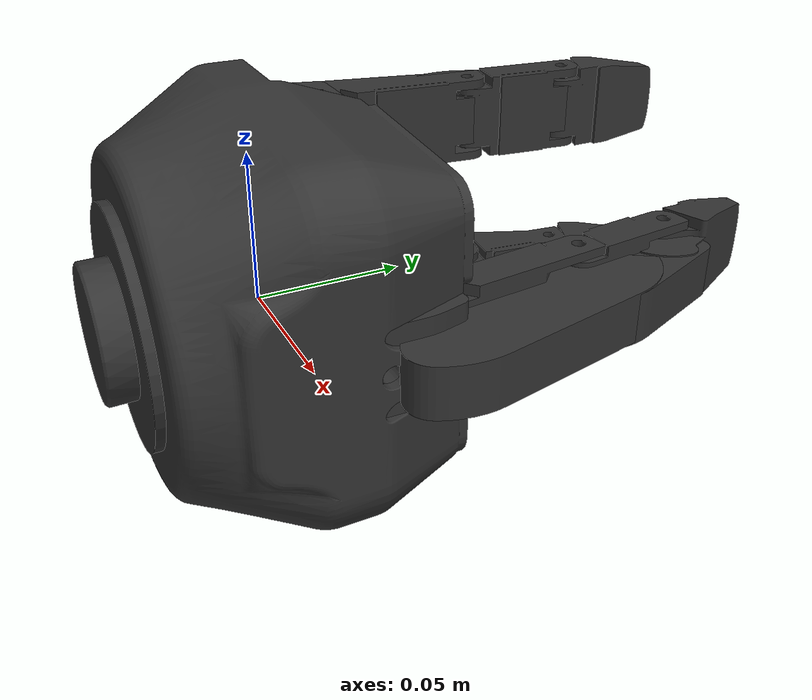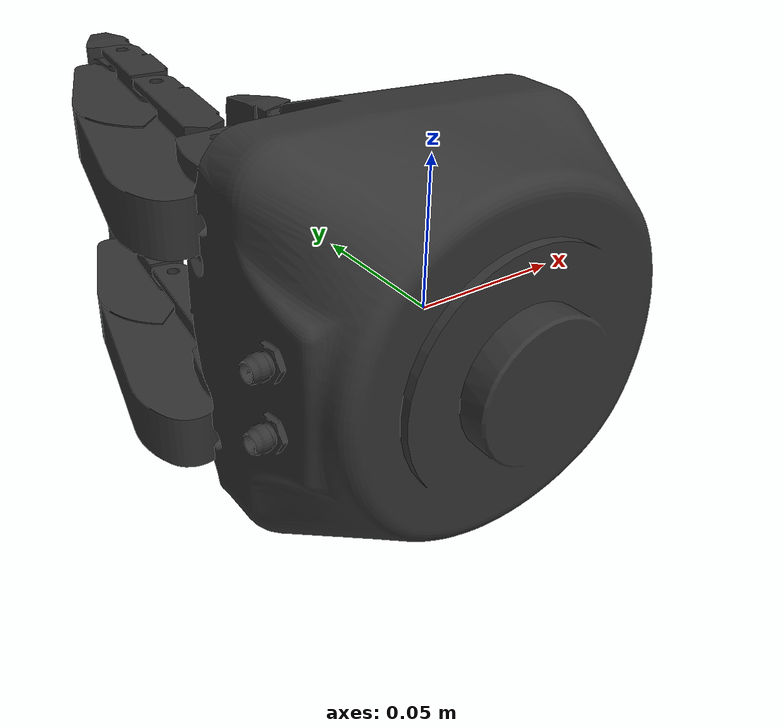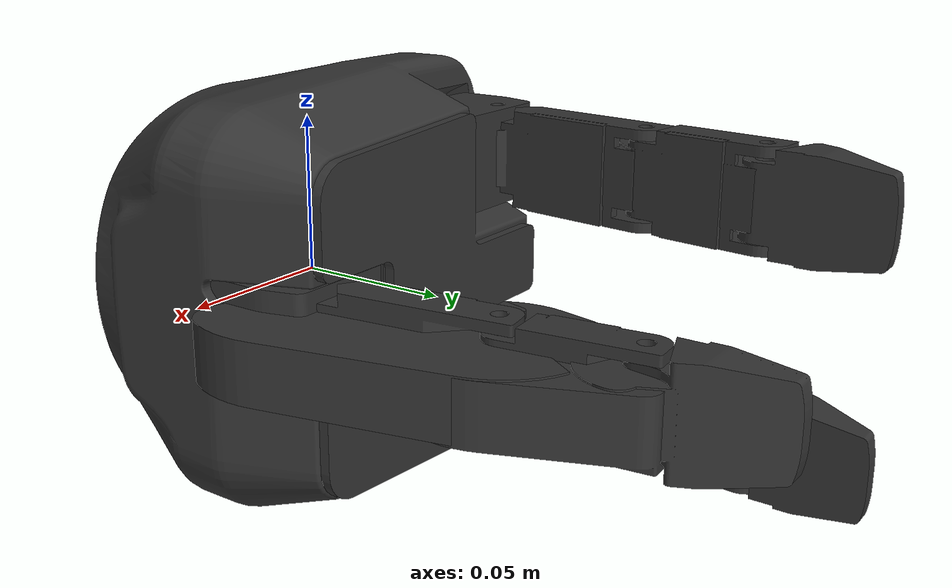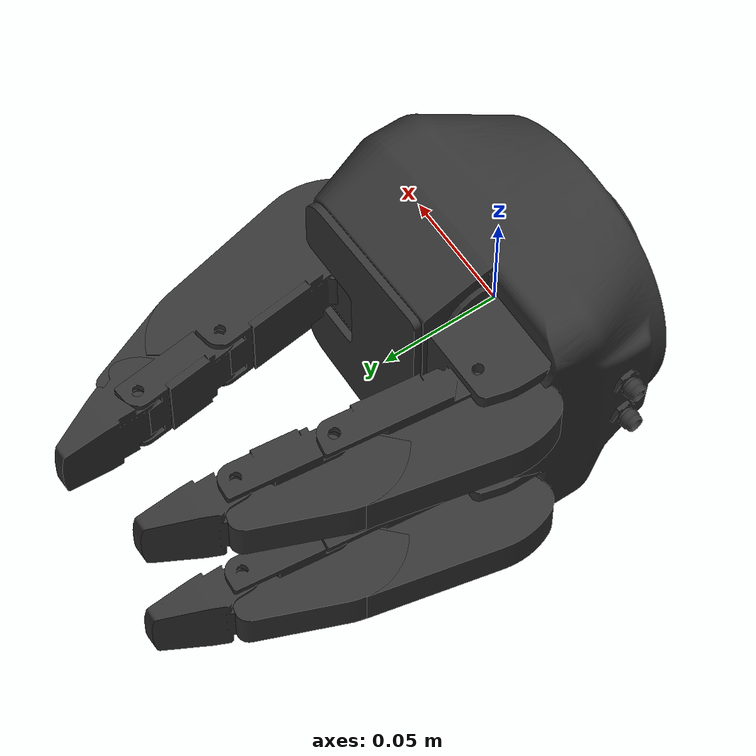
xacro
<?xml version="1.0" ?>

<!--
robotiq-3f-gripper_articulated - articulated version of the robotiq robotiq-3f-gripper,
3 fingered gripper.
-->
<robot name="robotiq-3f-gripper_articulated" xmlns:xacro="http://ros.org/wiki/xacro">

        <xacro:include filename="$(find robotiq_3f_gripper_visualization)/cfg/robotiq-3f-gripper_articulated_macro.xacro" />
        <xacro:robotiq-3f-gripper_articulated prefix=""/>

</robot>

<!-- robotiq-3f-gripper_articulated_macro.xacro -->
<robot xmlns:xacro="http://ros.org/wiki/xacro">
        <xacro:include filename="$(find robotiq_3f_gripper_visualization)/cfg/robotiq-3f-gripper_finger_articulated_macro.xacro" />
        <xacro:macro name="robotiq-3f-gripper_articulated" params="prefix">
        <xacro:robotiq-3f-gripper_finger_articulated prefix="${prefix}finger_1_"/>
        <xacro:robotiq-3f-gripper_finger_articulated prefix="${prefix}finger_2_"/>
        <xacro:robotiq-3f-gripper_finger_articulated prefix="${prefix}finger_middle_"/>
		<!-- link list -->
		<link name="${prefix}palm">
			<visual>
				<geometry>
                                        <mesh filename="package://robotiq_3f_gripper_visualization/meshes/robotiq-3f-gripper_articulated/visual/palm.dae" />
				</geometry>
				<material name="gray">
					<color rgba="0.2 0.2 0.2 1"/>
				</material>
			</visual>
			<collision>
				<geometry>
                                        <mesh filename="package://robotiq_3f_gripper_visualization/meshes/robotiq-3f-gripper_articulated/collision/palm.STL" />
				</geometry>
				<material name="yellow">
					<color rgba="0 1 1 1"/>
				</material>
			</collision>
		</link>
		<link name="${prefix}tool0"/>

        <inertial>
            <origin xyz="0 0 0" rpy="0 0 0"/>
            <mass value="1.3"/>
            <inertia ixx="0.006012" ixy="0.000079" ixz="-0.00024" iyy="0.012892" iyz="0" izz="0.002435" />
        </inertial>
		<!-- end of link list -->
		<!-- joint list -->

		<joint name="${prefix}palm_finger_1_joint" type="revolute">
			<parent link="${prefix}palm"/>
			<child link="${prefix}finger_1_link_0"/>
			<axis xyz="0 1 0"/>
			<origin xyz="-0.0455 0.0214 0.036" rpy="0 3.1416 -1.57"/>
			<limit lower="-0.1784" upper="0.192" effort="100" velocity="100"/>
		</joint>
		<joint name="${prefix}palm_finger_2_joint" type="revolute">
			<parent link="${prefix}palm"/>
			<child link="${prefix}finger_2_link_0"/>
			<axis xyz="0 1 0"/>
			<origin xyz="-0.0455 0.0214 -0.036" rpy="0 3.1416 -1.57"/>
			<limit lower="-0.192" upper="0.1784" effort="100" velocity="100"/>
		</joint>
		<joint name="${prefix}palm_finger_middle_joint" type="fixed">
			<parent link="${prefix}palm"/>
			<child link="${prefix}finger_middle_link_0"/>
			<axis xyz="0 0 1"/>
			<origin xyz="0.0455 0.0214 0" rpy="0 0 1.57"/>
		</joint>
		<joint name="${prefix}palm_tool0" type="fixed">
			<parent link="${prefix}palm"/>
			<child link="${prefix}tool0"/>
			<origin xyz="0.0 0.0875 0.0" rpy="0 0 1.5707"/>
		</joint>
		<!-- end of joint list -->
	</xacro:macro>
</robot>

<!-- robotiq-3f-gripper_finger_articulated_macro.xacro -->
<robot xmlns:xacro="http://ros.org/wiki/xacro">
        <xacro:macro name="robotiq-3f-gripper_finger_articulated" params="prefix">
		<!-- link list -->
		<link name="${prefix}link_0">
			<visual>
				<origin xyz="0.020 0 0" rpy="0 0 0"/>
				<geometry>
                                        <mesh filename="package://robotiq_3f_gripper_visualization/meshes/robotiq-3f-gripper_articulated/visual/link_0.dae" />
				</geometry>
				<material name="gray">
					<color rgba="0.2 0.2 0.2 1"/>
				</material>
			</visual>
			<collision>
				<origin xyz="0.020 0 0" rpy="0 0 0"/>
				<geometry>
                                        <mesh filename="package://robotiq_3f_gripper_visualization/meshes/robotiq-3f-gripper_articulated/collision/link_0.STL" />
				</geometry>
				<material name="yellow">
					<color rgba="0 1 1 1"/>
				</material>
			</collision>
            <inertial>
                <origin xyz="0 0 0" rpy="0 0 0"/>
                <mass value="0.05"/>
                <inertia ixx="0.01" ixy="-0.00002" ixz="0.00001" iyy="0.0008" iyz="0" izz="0.001" />
            </inertial>
		</link>
		<link name="${prefix}link_1">
			<visual>
				<origin xyz="0.050 -.028 0" rpy="0 0 -0.52"/>
				<geometry>
                                        <mesh filename="package://robotiq_3f_gripper_visualization/meshes/robotiq-3f-gripper_articulated/visual/link_1.dae" />
				</geometry>
				<material name="gray"/>
			</visual>
			<collision>
				<origin xyz="0.050 -.028 0" rpy="0 0 -0.52"/>
				<geometry>
                                        <mesh filename="package://robotiq_3f_gripper_visualization/meshes/robotiq-3f-gripper_articulated/collision/link_1.STL" />
				</geometry>
				<material name="yellow"/>
			</collision>
            <inertial>
                <origin xyz="0 0 0" rpy="0 0 0"/>
                <mass value="0.15"/>
                <inertia ixx="0.001859" ixy="-0.000376" ixz="0.000028" iyy="0.012756" iyz="0" izz="0.0024" />
            </inertial>
		</link>
		<link name="${prefix}link_2">
			<visual>
				<origin xyz="0.039 0 0.0075" rpy="0 0 0"/>
				<geometry>
                                        <mesh filename="package://robotiq_3f_gripper_visualization/meshes/robotiq-3f-gripper_articulated/visual/link_2.dae" />
				</geometry>
				<material name="gray"/>
			</visual>
			<collision>
				<origin xyz="0.039 0 0.0075" rpy="0 0 0"/>
				<geometry>
                                        <mesh filename="package://robotiq_3f_gripper_visualization/meshes/robotiq-3f-gripper_articulated/collision/link_2.STL" />
				</geometry>
				<material name="yellow"/>
			</collision>
            <inertial>
                <origin xyz="0 0 0" rpy="0 0 0"/>
                <mass value="0.15"/>
                <inertia ixx="0.001859" ixy="-0.000376" ixz="0.000028" iyy="0.012756" iyz="0" izz="0.0024" />
            </inertial>
		</link>
		<link name="${prefix}link_3">
			<visual>
				<origin xyz="0 0 0" rpy="0 0 0.52"/>
				<geometry>
                                        <mesh filename="package://robotiq_3f_gripper_visualization/meshes/robotiq-3f-gripper_articulated/visual/link_3.dae" />
				</geometry>
				<material name="gray"/>
			</visual>
			<collision>
				<origin xyz="0 0 0" rpy="0 0 0.52"/>
				<geometry>
                                        <mesh filename="package://robotiq_3f_gripper_visualization/meshes/robotiq-3f-gripper_articulated/collision/link_3.STL" />
				</geometry>
				<material name="yellow"/>
			</collision>
            <inertial>
                <origin xyz="0 0 0" rpy="0 0 0"/>
                <mass value="0.05"/>
                <inertia ixx="0.001239" ixy="-0.000251" ixz="0.000019" iyy="0.00085" iyz="0" izz="0.001632" />
            </inertial>
		</link>

		<!-- end of link list -->
		<!-- joint list -->
		<joint name="${prefix}joint_1" type="revolute">
			<parent link="${prefix}link_0"/>
			<child link="${prefix}link_1"/>
			<axis xyz="0 0 1"/>
			<origin xyz="0.020 0 0" rpy="0 0 0"/>
			<limit lower="0.0495" upper="1.2218" effort="100" velocity="100"/>
		</joint>
		<joint name="${prefix}joint_2" type="revolute">
			<parent link="${prefix}link_1"/>
			<child link="${prefix}link_2"/>
			<axis xyz="0 0 1"/>
			<origin xyz="0.050 -.028 0" rpy="0 0 -0.52"/>
			<limit lower="0.0" upper="1.5708" effort="100" velocity="100"/>
		</joint>
		<joint name="${prefix}joint_3" type="revolute">
			<parent link="${prefix}link_2"/>
			<child link="${prefix}link_3"/>
			<axis xyz="0 0 1"/>
			<origin xyz="0.039 0 0" rpy="0 0 0"/>
			<limit lower="-1.2217" upper="-0.0523" effort="100" velocity="100"/>
		</joint>
		<!-- end of joint list -->
	</xacro:macro>
</robot>
